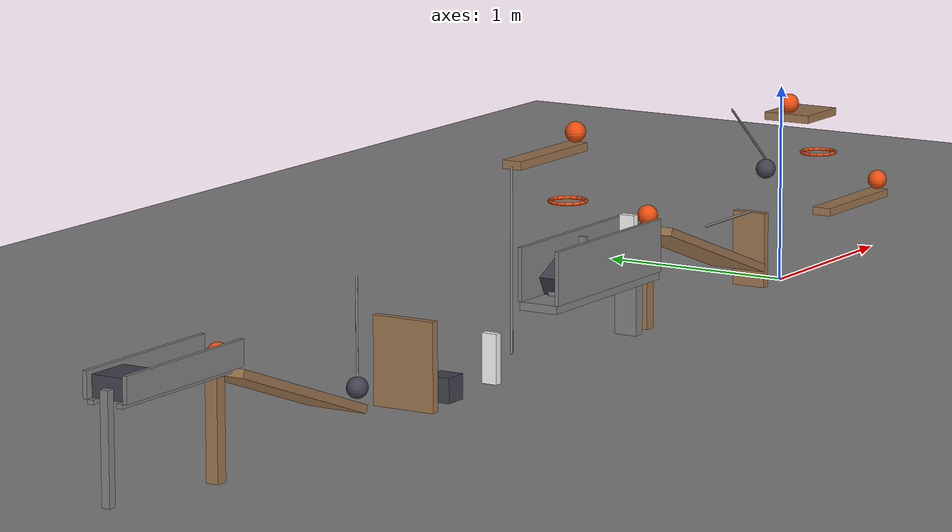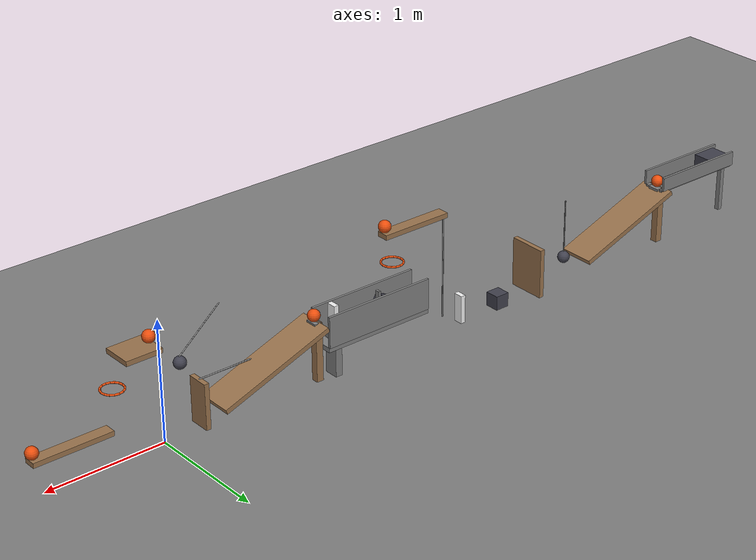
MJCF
<mujoco model="revised_passive_chain_approximation">
  <compiler angle="radian"/>
  <option timestep="0.002"/>
  <worldbody>
    <geom name="floor" type="plane" size="12 12 0.1" friction="0.68 0 0"/>
    <body name="ramp1">
      <geom name="ramp1_deck" type="box" pos="-4.53015 0 0.32101" size="0.5 0.15 0.02" euler="0 0.349066 0" friction="0.68 0 0" solref="0.01 1" rgba="0.6 0.45 0.3 1"/>
      <geom name="ramp1_leg" type="box" pos="-5 0 0.24601" size="0.03 0.03 0.24601" friction="0.68 0 0" solref="0.01 1" rgba="0.6 0.45 0.3 1"/>
    </body>
    <body name="cart1 left track">
      <geom name="cart1 left track" type="box" pos="-5.36 0.075 0.497798" size="0.42 0.015 0.01" friction="0 0 0" solref="0.01 1"/>
    </body>
    <body name="cart1 right track">
      <geom name="cart1 right track" type="box" pos="-5.36 -0.075 0.497798" size="0.42 0.015 0.01" friction="0 0 0" solref="0.01 1"/>
    </body>
    <body name="cart1 left guide">
      <geom name="cart1 left guide" type="box" pos="-5.36 0.101 0.567798" size="0.42 0.01 0.06" friction="0 0 0" solref="0.01 1"/>
    </body>
    <body name="cart1 right guide">
      <geom name="cart1 right guide" type="box" pos="-5.36 -0.101 0.567798" size="0.42 0.01 0.06" friction="0 0 0" solref="0.01 1"/>
    </body>
    <body name="ball1 starting ledge">
      <geom name="ball1 starting ledge" type="box" pos="-4.98 0 0.497798" size="0.05 0.05 0.01" friction="0.68 0 0" solref="0.01 1"/>
    </body>
    <body name="ball1" pos="-4.97606 0 0.557798">
      <freejoint/>
      <geom name="ball1" type="sphere" pos="0 0 0" size="0.05" mass="0.2" condim="6" friction="0.68 0 0" solref="0.01 1" rgba="0.9 0.3 0.05 1"/>
    </body>
    <body name="cart1" pos="-5.63606 0 0.557798">
      <freejoint/>
      <geom name="cart1" type="box" pos="0 0 0" size="0.11 0.09 0.05" mass="0.5" friction="0 0 0" solref="0.01 1" rgba="0.25 0.25 0.3 1"/>
    </body>
    <body name="cart1 spring pusher" pos="-5.76706 0 0.057798">
      <joint name="cart1_spring_hinge" type="hinge" pos="0 0 0" axis="0 1 0" limited="true" range="0 0.4" stiffness="4.5" springref="0.4" damping="0.04" armature="0.002"/>
      <geom name="cart1 spring pusher" type="box" pos="0 0 0.25" size="0.02 0.02 0.25" mass="0.02" friction="0.68 0 0" solref="0.01 1"/>
    </body>
    <body name="pendulum1" pos="-3.91031 0 0.7">
      <joint name="pendulum1_hinge" type="hinge" pos="0 0 0" axis="0 1 0" limited="true" range="-0.698132 0" damping="0.04"/>
      <geom name="pendulum1" type="sphere" pos="0 0 -0.5" size="0.05" mass="0.3" friction="0.68 0 0" solref="0.01 1" rgba="0.25 0.25 0.3 1"/>
      <geom name="pendulum1 rod" type="capsule" size="0.005" fromto="0 0 0 0 0 -0.45" mass="0.05" friction="0.68 0 0" solref="0.01 1"/>
    </body>
    <body name="door1" pos="-3.51891 0 0.025">
      <joint name="door1_hinge" type="hinge" pos="0 0 0" axis="0 1 0" limited="true" range="0 1.22173" damping="0.04"/>
      <geom name="door1" type="box" pos="0 0 0.21" size="0.02 0.16 0.21" mass="0.45" friction="0.68 0 0" solref="0.01 1" rgba="0.6 0.45 0.3 1"/>
    </body>
    <body name="block1" pos="-3.18891 0 0.06">
      <freejoint/>
      <geom name="block1" type="box" pos="0 0 0" size="0.06 0.06 0.06" mass="0.35" friction="0.68 0 0" solref="0.01 1" rgba="0.25 0.25 0.3 1"/>
    </body>
    <body name="domino1" pos="-2.78891 0 0.12">
      <freejoint/>
      <geom name="domino1" type="box" pos="0 0 0" size="0.02 0.04 0.12" mass="0.25" friction="0.68 0 0" solref="0.01 1" rgba="0.95 0.95 0.95 1"/>
    </body>
    <body name="lever1" pos="-2.30891 0 1">
      <joint name="lever1_hinge" type="hinge" pos="0 0 0" axis="0 1 0" limited="true" range="-0.785398 0" damping="0.04"/>
      <geom name="lever1" type="box" pos="0 0 0" size="0.3 0.05 0.02" mass="0.495" friction="0.68 0 0" solref="0.01 1" rgba="0.6 0.45 0.3 1"/>
      <geom name="lever1 striker" type="capsule" size="0.006" fromto="-0.3 0 -0.01 -0.3 0 -0.89" mass="0.005" friction="0.68 0 0" solref="0.01 1"/>
    </body>
    <body name="ball2" pos="-2.03391 0 1.07">
      <freejoint/>
      <geom name="ball2" type="sphere" pos="0 0 0" size="0.05" mass="0.2" condim="6" friction="0.68 0 0" solref="0.01 1" rgba="0.9 0.3 0.05 1"/>
    </body>
    <body name="ring1">
      <geom name="ring1_00" type="capsule" size="0.008" fromto="-2.01591 0 0.75 -2.02261 0.0336761 0.75" friction="0.68 0 0" solref="0.01 1" rgba="0.9 0.3 0.05 1"/>
      <geom name="ring1_01" type="capsule" size="0.008" fromto="-2.02261 0.0336761 0.75 -2.04169 0.0622254 0.75" friction="0.68 0 0" solref="0.01 1" rgba="0.9 0.3 0.05 1"/>
      <geom name="ring1_02" type="capsule" size="0.008" fromto="-2.04169 0.0622254 0.75 -2.07024 0.0813014 0.75" friction="0.68 0 0" solref="0.01 1" rgba="0.9 0.3 0.05 1"/>
      <geom name="ring1_03" type="capsule" size="0.008" fromto="-2.07024 0.0813014 0.75 -2.10391 0.088 0.75" friction="0.68 0 0" solref="0.01 1" rgba="0.9 0.3 0.05 1"/>
      <geom name="ring1_04" type="capsule" size="0.008" fromto="-2.10391 0.088 0.75 -2.13759 0.0813014 0.75" friction="0.68 0 0" solref="0.01 1" rgba="0.9 0.3 0.05 1"/>
      <geom name="ring1_05" type="capsule" size="0.008" fromto="-2.13759 0.0813014 0.75 -2.16614 0.0622254 0.75" friction="0.68 0 0" solref="0.01 1" rgba="0.9 0.3 0.05 1"/>
      <geom name="ring1_06" type="capsule" size="0.008" fromto="-2.16614 0.0622254 0.75 -2.18521 0.0336761 0.75" friction="0.68 0 0" solref="0.01 1" rgba="0.9 0.3 0.05 1"/>
      <geom name="ring1_07" type="capsule" size="0.008" fromto="-2.18521 0.0336761 0.75 -2.19191 1.07769e-17 0.75" friction="0.68 0 0" solref="0.01 1" rgba="0.9 0.3 0.05 1"/>
      <geom name="ring1_08" type="capsule" size="0.008" fromto="-2.19191 1.07769e-17 0.75 -2.18521 -0.0336761 0.75" friction="0.68 0 0" solref="0.01 1" rgba="0.9 0.3 0.05 1"/>
      <geom name="ring1_09" type="capsule" size="0.008" fromto="-2.18521 -0.0336761 0.75 -2.16614 -0.0622254 0.75" friction="0.68 0 0" solref="0.01 1" rgba="0.9 0.3 0.05 1"/>
      <geom name="ring1_10" type="capsule" size="0.008" fromto="-2.16614 -0.0622254 0.75 -2.13759 -0.0813014 0.75" friction="0.68 0 0" solref="0.01 1" rgba="0.9 0.3 0.05 1"/>
      <geom name="ring1_11" type="capsule" size="0.008" fromto="-2.13759 -0.0813014 0.75 -2.10391 -0.088 0.75" friction="0.68 0 0" solref="0.01 1" rgba="0.9 0.3 0.05 1"/>
      <geom name="ring1_12" type="capsule" size="0.008" fromto="-2.10391 -0.088 0.75 -2.07024 -0.0813014 0.75" friction="0.68 0 0" solref="0.01 1" rgba="0.9 0.3 0.05 1"/>
      <geom name="ring1_13" type="capsule" size="0.008" fromto="-2.07024 -0.0813014 0.75 -2.04169 -0.0622254 0.75" friction="0.68 0 0" solref="0.01 1" rgba="0.9 0.3 0.05 1"/>
      <geom name="ring1_14" type="capsule" size="0.008" fromto="-2.04169 -0.0622254 0.75 -2.02261 -0.0336761 0.75" friction="0.68 0 0" solref="0.01 1" rgba="0.9 0.3 0.05 1"/>
      <geom name="ring1_15" type="capsule" size="0.008" fromto="-2.02261 -0.0336761 0.75 -2.01591 -2.15538e-17 0.75" friction="0.68 0 0" solref="0.01 1" rgba="0.9 0.3 0.05 1"/>
    </body>
    <body name="cart2 track">
      <geom name="cart2 track" type="box" pos="-1.89248 0 0.28" size="0.48 0.1 0.02" friction="0 0 0" solref="0.01 1"/>
    </body>
    <body name="cart2 left guide">
      <geom name="cart2 left guide" type="box" pos="-1.89248 0.101 0.43" size="0.48 0.01 0.13" friction="0 0 0" solref="0.01 1"/>
    </body>
    <body name="cart2 right guide">
      <geom name="cart2 right guide" type="box" pos="-1.89248 -0.101 0.43" size="0.48 0.01 0.13" friction="0 0 0" solref="0.01 1"/>
    </body>
    <body name="cart2" pos="-2.09248 0 0.393915">
      <freejoint/>
      <geom name="cart2" type="box" pos="0 0 0" size="0.11 0.09 0.05" euler="0 -0.463644 0" mass="0.491" friction="0 0 0" solref="0.01 1" rgba="0.25 0.25 0.3 1"/>
      <geom name="cart2 rear foot" type="box" pos="-0.07 0 -0.083915" size="0.02 0.06 0.01" mass="0.002" friction="0 0 0" solref="0.01 1"/>
      <geom name="cart2 front foot" type="box" pos="0.085 0 -0.043915" size="0.02 0.06 0.05" mass="0.002" friction="0 0 0" solref="0.01 1"/>
      <geom name="cart2 front bumper" type="box" pos="0.13 0 0.091085" size="0.01 0.02 0.07" mass="0.005" friction="0.68 0 0" solref="0.01 1"/>
    </body>
    <body name="domino2 pedestal">
      <geom name="domino2 pedestal" type="box" pos="-1.53248 0 0.175" size="0.03 0.06 0.175" friction="0.68 0 0" solref="0.01 1"/>
    </body>
    <body name="domino2" pos="-1.53248 0 0.47">
      <freejoint/>
      <geom name="domino2" type="box" pos="0 0 0" size="0.02 0.04 0.12" mass="0.25" friction="0.68 0 0" solref="0.01 1" rgba="0.95 0.95 0.95 1"/>
    </body>
    <body name="ramp2">
      <geom name="ramp2_deck" type="box" pos="-0.90657 0 0.32101" size="0.5 0.15 0.02" euler="0 0.349066 0" friction="0.68 0 0" solref="0.01 1" rgba="0.6 0.45 0.3 1"/>
      <geom name="ramp2_leg" type="box" pos="-1.37642 0 0.24601" size="0.03 0.03 0.24601" friction="0.68 0 0" solref="0.01 1" rgba="0.6 0.45 0.3 1"/>
    </body>
    <body name="ball3 starting ledge">
      <geom name="ball3 starting ledge" type="box" pos="-1.35248 0 0.497798" size="0.03 0.05 0.01" friction="0.68 0 0" solref="0.01 1"/>
    </body>
    <body name="ball3" pos="-1.35248 0 0.557798">
      <freejoint/>
      <geom name="ball3" type="sphere" pos="0 0 0" size="0.05" mass="0.2" condim="6" friction="0.68 0 0" solref="0.01 1" rgba="0.9 0.3 0.05 1"/>
    </body>
    <body name="flap1" pos="-0.316724 0 0.025">
      <joint name="flap1_hinge" type="hinge" pos="0 0 0" axis="0 1 0" limited="true" range="0 1.0472" damping="0.04"/>
      <geom name="flap1" type="box" pos="0 0 0.19" size="0.02 0.09 0.19" mass="0.275" friction="0.68 0 0" solref="0.01 1" rgba="0.6 0.45 0.3 1"/>
      <geom name="flap1 striker" type="capsule" size="0.006" fromto="0 0 0.38 -0.45 0 0.38" mass="0.005" friction="0.68 0 0" solref="0.01 1"/>
    </body>
    <body name="pendulum2" pos="-0.516277 0 0.953553">
      <joint name="pendulum2_hinge" type="hinge" pos="0 0 0" axis="0 1 0" limited="true" range="-0.663225 0" damping="0.04"/>
      <geom name="pendulum2" type="sphere" pos="0.353553 0 -0.353553" size="0.05" mass="0.3" friction="0.68 0 0" solref="0.01 1" rgba="0.25 0.25 0.3 1"/>
      <geom name="pendulum2 rod" type="capsule" size="0.005" fromto="0 0 0 0.353553 0 -0.303553" mass="0.05" friction="0.68 0 0" solref="0.01 1"/>
    </body>
    <body name="shelf1">
      <geom name="shelf1" type="box" pos="0.199676 0 0.83" size="0.15 0.125 0.02" friction="0.68 0 0" solref="0.01 1" rgba="0.6 0.45 0.3 1"/>
    </body>
    <body name="ball4" pos="0.079676 0 0.9">
      <freejoint/>
      <geom name="ball4" type="sphere" pos="0 0 0" size="0.05" mass="0.2" condim="6" friction="0.68 0 0" solref="0.01 1" rgba="0.9 0.3 0.05 1"/>
    </body>
    <body name="ring2">
      <geom name="ring2_00" type="capsule" size="0.008" fromto="0.487676 0 0.6 0.480977 0.0336761 0.6" friction="0.68 0 0" solref="0.01 1" rgba="0.9 0.3 0.05 1"/>
      <geom name="ring2_01" type="capsule" size="0.008" fromto="0.480977 0.0336761 0.6 0.461901 0.0622254 0.6" friction="0.68 0 0" solref="0.01 1" rgba="0.9 0.3 0.05 1"/>
      <geom name="ring2_02" type="capsule" size="0.008" fromto="0.461901 0.0622254 0.6 0.433352 0.0813014 0.6" friction="0.68 0 0" solref="0.01 1" rgba="0.9 0.3 0.05 1"/>
      <geom name="ring2_03" type="capsule" size="0.008" fromto="0.433352 0.0813014 0.6 0.399676 0.088 0.6" friction="0.68 0 0" solref="0.01 1" rgba="0.9 0.3 0.05 1"/>
      <geom name="ring2_04" type="capsule" size="0.008" fromto="0.399676 0.088 0.6 0.366 0.0813014 0.6" friction="0.68 0 0" solref="0.01 1" rgba="0.9 0.3 0.05 1"/>
      <geom name="ring2_05" type="capsule" size="0.008" fromto="0.366 0.0813014 0.6 0.337451 0.0622254 0.6" friction="0.68 0 0" solref="0.01 1" rgba="0.9 0.3 0.05 1"/>
      <geom name="ring2_06" type="capsule" size="0.008" fromto="0.337451 0.0622254 0.6 0.318375 0.0336761 0.6" friction="0.68 0 0" solref="0.01 1" rgba="0.9 0.3 0.05 1"/>
      <geom name="ring2_07" type="capsule" size="0.008" fromto="0.318375 0.0336761 0.6 0.311676 1.07769e-17 0.6" friction="0.68 0 0" solref="0.01 1" rgba="0.9 0.3 0.05 1"/>
      <geom name="ring2_08" type="capsule" size="0.008" fromto="0.311676 1.07769e-17 0.6 0.318375 -0.0336761 0.6" friction="0.68 0 0" solref="0.01 1" rgba="0.9 0.3 0.05 1"/>
      <geom name="ring2_09" type="capsule" size="0.008" fromto="0.318375 -0.0336761 0.6 0.337451 -0.0622254 0.6" friction="0.68 0 0" solref="0.01 1" rgba="0.9 0.3 0.05 1"/>
      <geom name="ring2_10" type="capsule" size="0.008" fromto="0.337451 -0.0622254 0.6 0.366 -0.0813014 0.6" friction="0.68 0 0" solref="0.01 1" rgba="0.9 0.3 0.05 1"/>
      <geom name="ring2_11" type="capsule" size="0.008" fromto="0.366 -0.0813014 0.6 0.399676 -0.088 0.6" friction="0.68 0 0" solref="0.01 1" rgba="0.9 0.3 0.05 1"/>
      <geom name="ring2_12" type="capsule" size="0.008" fromto="0.399676 -0.088 0.6 0.433352 -0.0813014 0.6" friction="0.68 0 0" solref="0.01 1" rgba="0.9 0.3 0.05 1"/>
      <geom name="ring2_13" type="capsule" size="0.008" fromto="0.433352 -0.0813014 0.6 0.461901 -0.0622254 0.6" friction="0.68 0 0" solref="0.01 1" rgba="0.9 0.3 0.05 1"/>
      <geom name="ring2_14" type="capsule" size="0.008" fromto="0.461901 -0.0622254 0.6 0.480977 -0.0336761 0.6" friction="0.68 0 0" solref="0.01 1" rgba="0.9 0.3 0.05 1"/>
      <geom name="ring2_15" type="capsule" size="0.008" fromto="0.480977 -0.0336761 0.6 0.487676 -2.15538e-17 0.6" friction="0.68 0 0" solref="0.01 1" rgba="0.9 0.3 0.05 1"/>
    </body>
    <body name="seesaw1" pos="0.764676 0 0.28">
      <joint name="seesaw1_hinge" type="hinge" pos="0 0 0" axis="0 1 0" limited="true" range="-0.733038 0" damping="0.04"/>
      <geom name="seesaw1" type="box" pos="0 0 0" size="0.325 0.05 0.02" mass="0.55" friction="0.68 0 0" solref="0.01 1" rgba="0.6 0.45 0.3 1"/>
    </body>
    <body name="ball5" pos="1.06468 0 0.35">
      <freejoint/>
      <geom name="ball5" type="sphere" pos="0 0 0" size="0.05" mass="0.2" condim="6" friction="0.68 0 0" solref="0.01 1" rgba="0.9 0.3 0.05 1"/>
    </body>
  </worldbody>
  <keyframe>
    <key name="start" qpos="-4.97606 0 0.557798 1 0 0 0 -5.63606 0 0.557798 1 0 0 0 0 0 0 -3.18891 0 0.06 1 0 0 0 -2.78891 0 0.12 1 0 0 0 0 -2.03391 0 1.07 1 0 0 0 -2.09248 0 0.393915 1 0 0 0 -1.53248 0 0.47 1 0 0 0 -1.35248 0 0.557798 1 0 0 0 0 0 0.079676 0 0.9 1 0 0 0 0 1.06468 0 0.35 1 0 0 0" qvel="0 0 0 0 0 0 0 0 0 0 0 0 0 0 0 0 0 0 0 0 0 0 0 0 0 0 0 0 0 0 0 0 0 0 0 0 0 0 0 0 0 0 0 0 0 0 0 0 0 0 0 0 0 0 0 0 0 0 0 0 0 0 0 0 0 0 0"/>
  </keyframe>
</mujoco>
